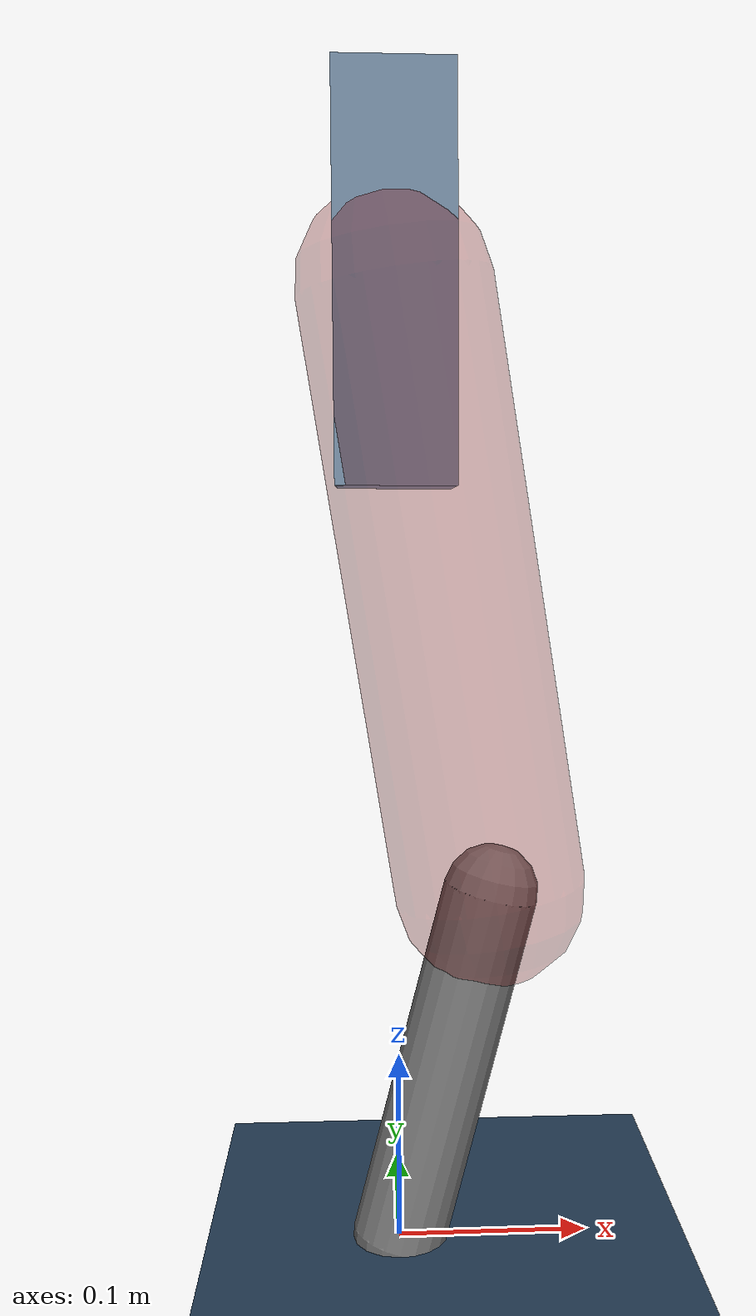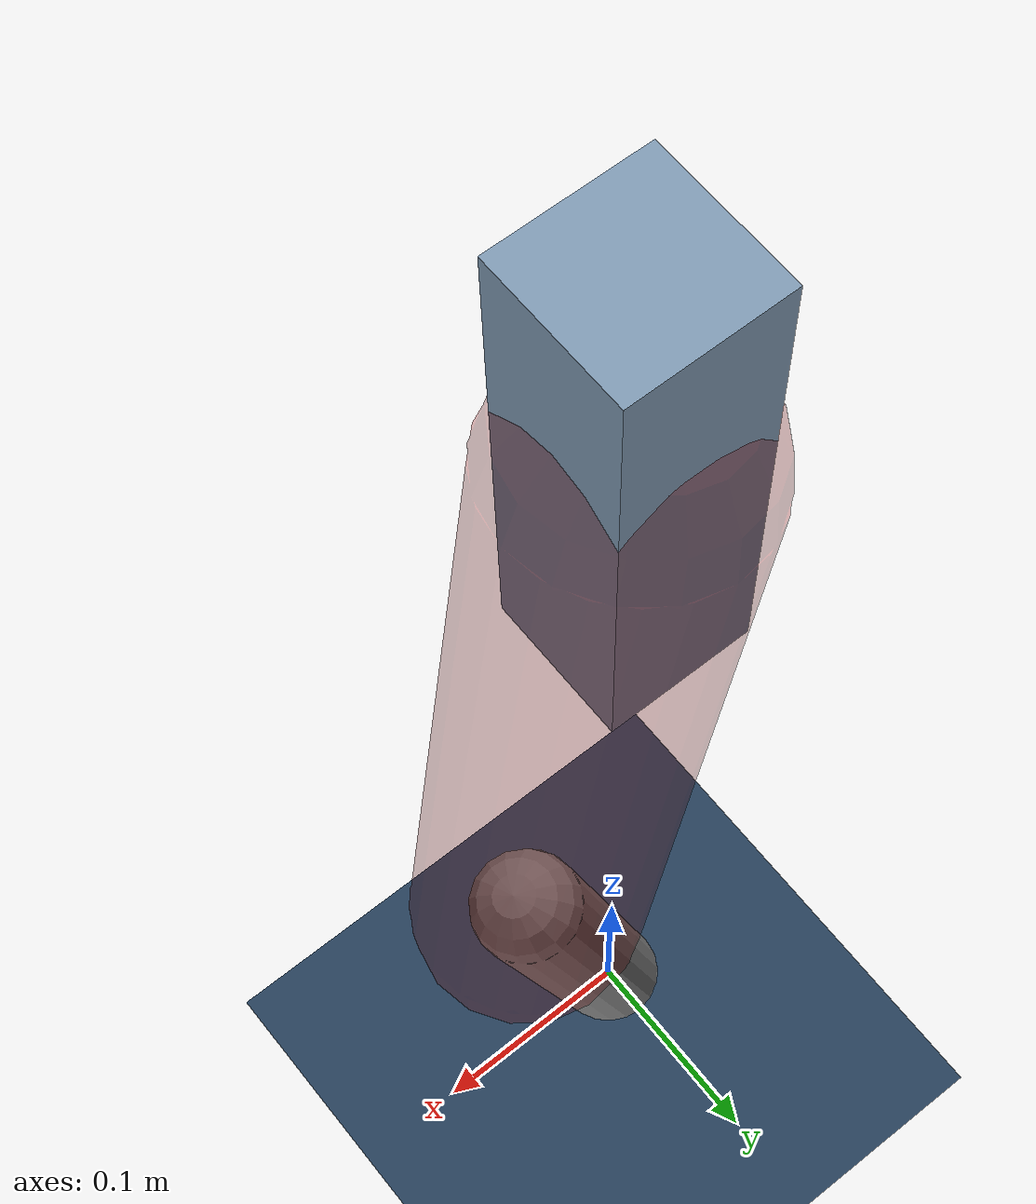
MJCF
<mujoco model="Hopper2D">
	<compiler inertiafromgeom="true" angle="radian" />
	<option timestep="0.001" integrator="implicit" cone="elliptic" solver="Newton" tolerance="1e-10" />

	<default>
		<geom contype="1" conaffinity="1" condim="3" friction="2 0.005 0.0001" solref="0.005 1" />
		<joint limited="true" damping="0.1" />
	</default>

	<asset>
		<texture name="skybox" type="skybox" builtin="gradient" rgb1=".4 .6 .8" rgb2="0 0 0" width="800" height="800" />
		<texture name="grid" type="2d" builtin="checker" rgb1=".1 .2 .3" rgb2=".2 .3 .4" width="300" height="300" mark="edge" markrgb=".2 .3 .4" />
		<material name="ground" texture="grid" texrepeat="1 1" texuniform="true" reflectance="0.1" />
		<material name="leg" rgba="0.5 0.6 0.7 1" />
	</asset>

	<worldbody>

		<geom name="floor" type="plane" size="5 5 0.25" material="ground" />

		<light directional="false" diffuse="0.8 0.8 0.8" specular="0.3 0.3 0.3" pos="0 0 2" dir="0 0 -1" />
		<light mode="targetbodycom" target="base" directional="false" diffuse="0.8 0.8 0.8" specular="0.3 0.3 0.3" pos="0 0 2" dir="0 0 -1" />

		<camera name="fixed" pos="0 -2 1" xyaxes="1 0 0 0 0 1" />
		<camera name="tracking" mode="trackcom" pos="0 -3 1" />

		<body name="root" pos="0 0 0.4975450052157834">
			<joint name="slide_x" type="slide" axis="1 0 0" range="-100 100" />
			<joint name="slide_z" type="slide" axis="0 0 1" range="0 10" />

			<body name="base" pos="0 0 0">
				<geom name="torso" type="box" size="0.03 0.03 0.1" mass="2.365" material="leg" />

				<body name="link1" pos="0 0 0" euler="0 1.414750910719011 0">
					<joint type="hinge" axis="0 -1 0" pos="0 0 0" name="hinge1" limited="true" range="-3.14 3.14" stiffness="0" damping="0.1" />
					<geom name="thigh" type="capsule" fromto="0 0 0 0.3132024820333138 0 0" size="0.05" rgba="0.5 0 0 0.3" mass="1.0246467014899472" />

					<body name="link2" pos="0.3132024820333138 0 0" euler="0 0.40920438456181035 0">
						<joint type="hinge" axis="0 -1 0" pos="0 0 0" name="hinge2" limited="true" range="-3.14 3.14" stiffness="0" damping="0.1" />
						<geom name="shank" type="capsule" fromto="0 0 0 0.19434252318246958 0 0" size="0.025" mass="0.3961082708642226" />

					</body>
				</body>
			</body>
		</body>
	</worldbody>

	<actuator>
		<motor name="torque1" joint="hinge1" ctrlrange="-67.15071874828367 67.15071874828367" ctrllimited="true" gear="1" />
		<motor name="torque2" joint="hinge2" ctrlrange="-88.70500713948566 88.70500713948566" ctrllimited="true" gear="1" />
	</actuator>
</mujoco>
